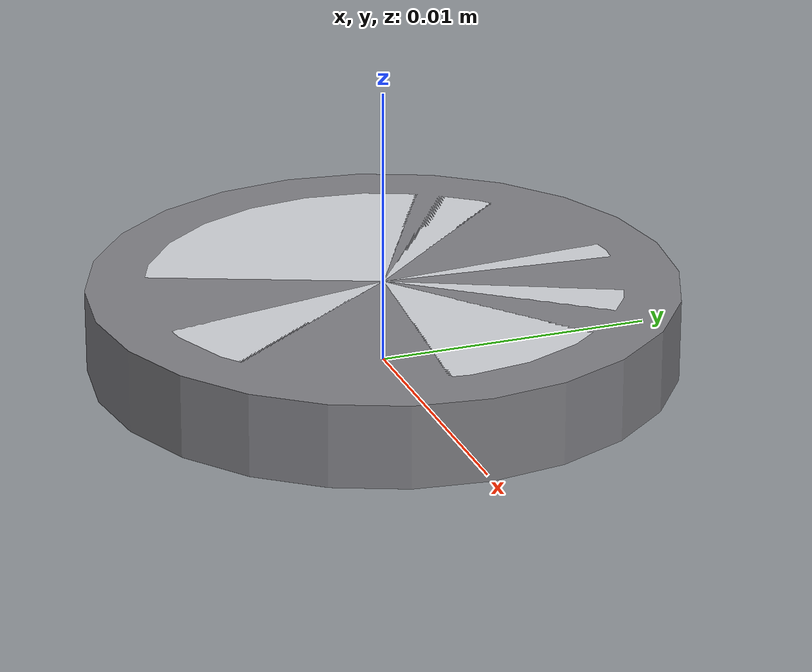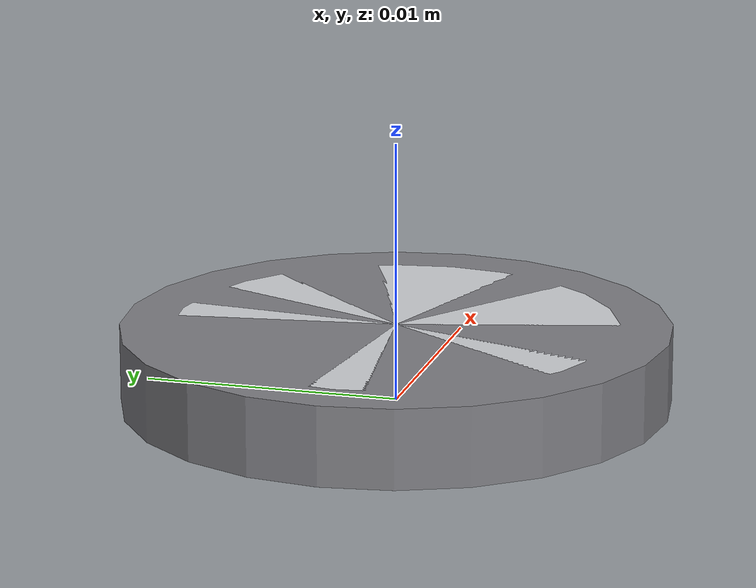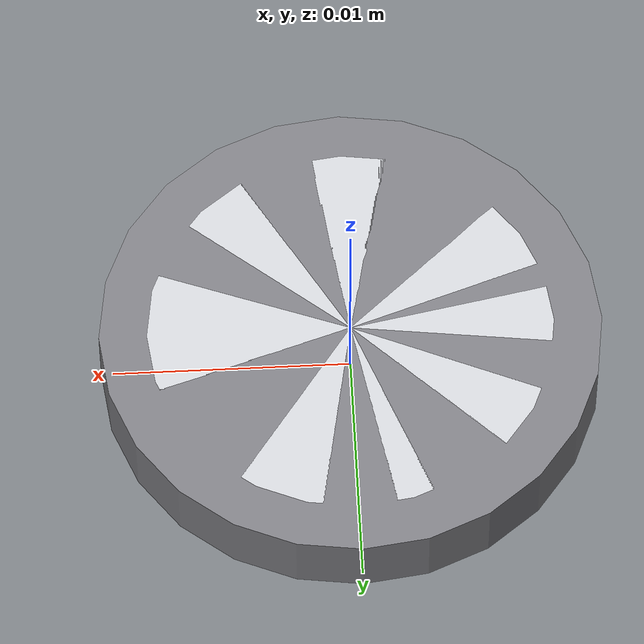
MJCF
<?xml version='1.0' encoding='utf-8'?>
<mujoco model="switch_quantity1_11">
  <worldbody>
    <body name="seq_07">
      <geom name="seq_07_base" type="cylinder" pos="0 0 0.0015" size="0.0105 0.0015" rgba="0.50 0.50 0.52 1" />
      <geom name="seq_07_button" type="cylinder" pos="0 0 0.0015" size="0.0085 0.0015" rgba="0.82 0.83 0.85 1" />
    </body>
  </worldbody>
</mujoco>
